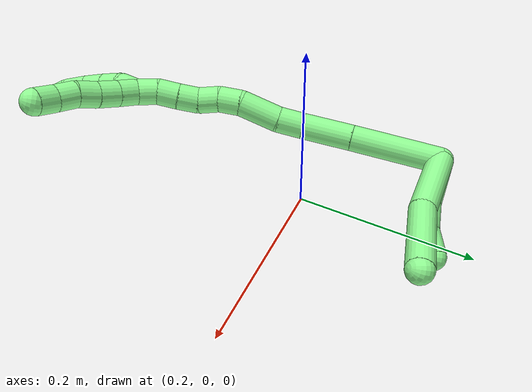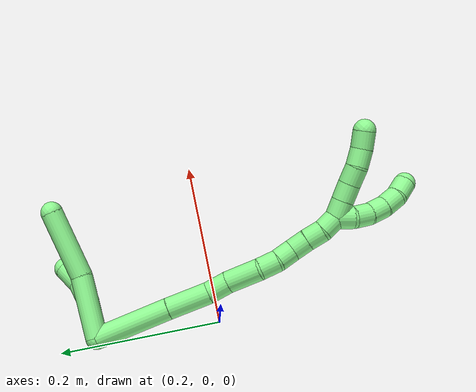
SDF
<sdf version="1.7">
 <world name="default">
  <model name="13">
   <static>0</static>
   <link name="13">
    <collision name="collision-cylinder-e_1_2_8">
     <pose>-0.005766 0.029401 0.019657 -0.981461 -0.16161 0.086487</pose>
     <geometry><cylinder><radius>0.0125</radius><length>0.071668</length></cylinder></geometry>
     <surface>
      <friction><ode><mu>1.16</mu><mu2>1.16</mu2><slip1>0</slip1><slip2>0</slip2></ode></friction>
      <contact><ode><kp>1e+06</kp><kd>1</kd><max_vel>0</max_vel><min_depth>0.001</min_depth></ode></contact>
     </surface>
    </collision>
    <visual name="visual-cylinder-e_1_2_8">
     <pose>-0.005766 0.029401 0.019657 -0.981461 -0.16161 0.086487</pose>
     <geometry><cylinder><radius>0.0125</radius><length>0.071668</length></cylinder></geometry>
     <material><ambient>0.564706 0.984314 0.572549 1</ambient></material>
    </visual>
    <collision name="collision-cylinder-e_2_8_6">
     <pose>-0.026037 0.090465 0.057233 -1.05582 -0.379385 0.222989</pose>
     <geometry><cylinder><radius>0.0125</radius><length>0.078332</length></cylinder></geometry>
     <surface>
      <friction><ode><mu>1.16</mu><mu2>1.16</mu2><slip1>0</slip1><slip2>0</slip2></ode></friction>
      <contact><ode><kp>1e+06</kp><kd>1</kd><max_vel>0</max_vel><min_depth>0.001</min_depth></ode></contact>
     </surface>
    </collision>
    <visual name="visual-cylinder-e_2_8_6">
     <pose>-0.026037 0.090465 0.057233 -1.05582 -0.379385 0.222989</pose>
     <geometry><cylinder><radius>0.0125</radius><length>0.078332</length></cylinder></geometry>
     <material><ambient>0.564706 0.984314 0.572549 1</ambient></material>
    </visual>
    <collision name="collision-cylinder-e_1_2_9">
     <pose>0.002068 0.021784 0.008717 -1.19016 0.087892 -0.059518</pose>
     <geometry><cylinder><radius>0.0125</radius><length>0.047109</length></cylinder></geometry>
     <surface>
      <friction><ode><mu>1.16</mu><mu2>1.16</mu2><slip1>0</slip1><slip2>0</slip2></ode></friction>
      <contact><ode><kp>1e+06</kp><kd>1</kd><max_vel>0</max_vel><min_depth>0.001</min_depth></ode></contact>
     </surface>
    </collision>
    <visual name="visual-cylinder-e_1_2_9">
     <pose>0.002068 0.021784 0.008717 -1.19016 0.087892 -0.059518</pose>
     <geometry><cylinder><radius>0.0125</radius><length>0.047109</length></cylinder></geometry>
     <material><ambient>0.564706 0.984314 0.572549 1</ambient></material>
    </visual>
    <collision name="collision-cylinder-e_2_9_10">
     <pose>0.005719 0.0565 0.018795 -1.46593 0.121171 -0.109112</pose>
     <geometry><cylinder><radius>0.0125</radius><length>0.026198</length></cylinder></geometry>
     <surface>
      <friction><ode><mu>1.16</mu><mu2>1.16</mu2><slip1>0</slip1><slip2>0</slip2></ode></friction>
      <contact><ode><kp>1e+06</kp><kd>1</kd><max_vel>0</max_vel><min_depth>0.001</min_depth></ode></contact>
     </surface>
    </collision>
    <visual name="visual-cylinder-e_2_9_10">
     <pose>0.005719 0.0565 0.018795 -1.46593 0.121171 -0.109112</pose>
     <geometry><cylinder><radius>0.0125</radius><length>0.026198</length></cylinder></geometry>
     <material><ambient>0.564706 0.984314 0.572549 1</ambient></material>
    </visual>
    <collision name="collision-cylinder-e_3_10_5">
     <pose>0.004892 0.082554 0.019823 -1.59614 -0.181549 0.186182</pose>
     <geometry><cylinder><radius>0.0125</radius><length>0.026693</length></cylinder></geometry>
     <surface>
      <friction><ode><mu>1.16</mu><mu2>1.16</mu2><slip1>0</slip1><slip2>0</slip2></ode></friction>
      <contact><ode><kp>1e+06</kp><kd>1</kd><max_vel>0</max_vel><min_depth>0.001</min_depth></ode></contact>
     </surface>
    </collision>
    <visual name="visual-cylinder-e_3_10_5">
     <pose>0.004892 0.082554 0.019823 -1.59614 -0.181549 0.186182</pose>
     <geometry><cylinder><radius>0.0125</radius><length>0.026693</length></cylinder></geometry>
     <material><ambient>0.564706 0.984314 0.572549 1</ambient></material>
    </visual>
    <collision name="collision-cylinder-e_1_2_11">
     <pose>0.020736 -0.012608 0.035689 0.339588 0.501187 0.087715</pose>
     <geometry><cylinder><radius>0.0125</radius><length>0.086316</length></cylinder></geometry>
     <surface>
      <friction><ode><mu>1.16</mu><mu2>1.16</mu2><slip1>0</slip1><slip2>0</slip2></ode></friction>
      <contact><ode><kp>1e+06</kp><kd>1</kd><max_vel>0</max_vel><min_depth>0.001</min_depth></ode></contact>
     </surface>
    </collision>
    <visual name="visual-cylinder-e_1_2_11">
     <pose>0.020736 -0.012608 0.035689 0.339588 0.501187 0.087715</pose>
     <geometry><cylinder><radius>0.0125</radius><length>0.086316</length></cylinder></geometry>
     <material><ambient>0.564706 0.984314 0.572549 1</ambient></material>
    </visual>
    <collision name="collision-cylinder-e_2_11_12">
     <pose>0.053765 -0.032374 0.090971 0.350253 0.532523 0.096441</pose>
     <geometry><cylinder><radius>0.0125</radius><length>0.048427</length></cylinder></geometry>
     <surface>
      <friction><ode><mu>1.16</mu><mu2>1.16</mu2><slip1>0</slip1><slip2>0</slip2></ode></friction>
      <contact><ode><kp>1e+06</kp><kd>1</kd><max_vel>0</max_vel><min_depth>0.001</min_depth></ode></contact>
     </surface>
    </collision>
    <visual name="visual-cylinder-e_2_11_12">
     <pose>0.053765 -0.032374 0.090971 0.350253 0.532523 0.096441</pose>
     <geometry><cylinder><radius>0.0125</radius><length>0.048427</length></cylinder></geometry>
     <material><ambient>0.564706 0.984314 0.572549 1</ambient></material>
    </visual>
    <collision name="collision-cylinder-e_3_12_13">
     <pose>0.070643 -0.04249 0.121705 0.259532 0.378555 0.049989</pose>
     <geometry><cylinder><radius>0.0125</radius><length>0.024809</length></cylinder></geometry>
     <surface>
      <friction><ode><mu>1.16</mu><mu2>1.16</mu2><slip1>0</slip1><slip2>0</slip2></ode></friction>
      <contact><ode><kp>1e+06</kp><kd>1</kd><max_vel>0</max_vel><min_depth>0.001</min_depth></ode></contact>
     </surface>
    </collision>
    <visual name="visual-cylinder-e_3_12_13">
     <pose>0.070643 -0.04249 0.121705 0.259532 0.378555 0.049989</pose>
     <geometry><cylinder><radius>0.0125</radius><length>0.024809</length></cylinder></geometry>
     <material><ambient>0.564706 0.984314 0.572549 1</ambient></material>
    </visual>
    <collision name="collision-cylinder-e_4_13_14">
     <pose>0.081066 -0.052846 0.149686 0.413931 0.30735 0.065025</pose>
     <geometry><cylinder><radius>0.0125</radius><length>0.038597</length></cylinder></geometry>
     <surface>
      <friction><ode><mu>1.16</mu><mu2>1.16</mu2><slip1>0</slip1><slip2>0</slip2></ode></friction>
      <contact><ode><kp>1e+06</kp><kd>1</kd><max_vel>0</max_vel><min_depth>0.001</min_depth></ode></contact>
     </surface>
    </collision>
    <visual name="visual-cylinder-e_4_13_14">
     <pose>0.081066 -0.052846 0.149686 0.413931 0.30735 0.065025</pose>
     <geometry><cylinder><radius>0.0125</radius><length>0.038597</length></cylinder></geometry>
     <material><ambient>0.564706 0.984314 0.572549 1</ambient></material>
    </visual>
    <collision name="collision-cylinder-e_5_14_15">
     <pose>0.092358 -0.062705 0.175459 0.268805 0.532045 0.073655</pose>
     <geometry><cylinder><radius>0.0125</radius><length>0.0215</length></cylinder></geometry>
     <surface>
      <friction><ode><mu>1.16</mu><mu2>1.16</mu2><slip1>0</slip1><slip2>0</slip2></ode></friction>
      <contact><ode><kp>1e+06</kp><kd>1</kd><max_vel>0</max_vel><min_depth>0.001</min_depth></ode></contact>
     </surface>
    </collision>
    <visual name="visual-cylinder-e_5_14_15">
     <pose>0.092358 -0.062705 0.175459 0.268805 0.532045 0.073655</pose>
     <geometry><cylinder><radius>0.0125</radius><length>0.0215</length></cylinder></geometry>
     <material><ambient>0.564706 0.984314 0.572549 1</ambient></material>
    </visual>
    <collision name="collision-cylinder-e_6_15_16">
     <pose>0.103654 -0.065092 0.19266 -0.008814 0.615043 -0.002799</pose>
     <geometry><cylinder><radius>0.0125</radius><length>0.020251</length></cylinder></geometry>
     <surface>
      <friction><ode><mu>1.16</mu><mu2>1.16</mu2><slip1>0</slip1><slip2>0</slip2></ode></friction>
      <contact><ode><kp>1e+06</kp><kd>1</kd><max_vel>0</max_vel><min_depth>0.001</min_depth></ode></contact>
     </surface>
    </collision>
    <visual name="visual-cylinder-e_6_15_16">
     <pose>0.103654 -0.065092 0.19266 -0.008814 0.615043 -0.002799</pose>
     <geometry><cylinder><radius>0.0125</radius><length>0.020251</length></cylinder></geometry>
     <material><ambient>0.564706 0.984314 0.572549 1</ambient></material>
    </visual>
    <collision name="collision-cylinder-e_7_16_17">
     <pose>0.112847 -0.066501 0.210248 0.157722 0.341255 0.027231</pose>
     <geometry><cylinder><radius>0.0125</radius><length>0.020026</length></cylinder></geometry>
     <surface>
      <friction><ode><mu>1.16</mu><mu2>1.16</mu2><slip1>0</slip1><slip2>0</slip2></ode></friction>
      <contact><ode><kp>1e+06</kp><kd>1</kd><max_vel>0</max_vel><min_depth>0.001</min_depth></ode></contact>
     </surface>
    </collision>
    <visual name="visual-cylinder-e_7_16_17">
     <pose>0.112847 -0.066501 0.210248 0.157722 0.341255 0.027231</pose>
     <geometry><cylinder><radius>0.0125</radius><length>0.020026</length></cylinder></geometry>
     <material><ambient>0.564706 0.984314 0.572549 1</ambient></material>
    </visual>
    <collision name="collision-cylinder-e_8_17_18">
     <pose>0.119799 -0.070029 0.228685 0.220664 0.367816 0.041207</pose>
     <geometry><cylinder><radius>0.0125</radius><length>0.02003</length></cylinder></geometry>
     <surface>
      <friction><ode><mu>1.16</mu><mu2>1.16</mu2><slip1>0</slip1><slip2>0</slip2></ode></friction>
      <contact><ode><kp>1e+06</kp><kd>1</kd><max_vel>0</max_vel><min_depth>0.001</min_depth></ode></contact>
     </surface>
    </collision>
    <visual name="visual-cylinder-e_8_17_18">
     <pose>0.119799 -0.070029 0.228685 0.220664 0.367816 0.041207</pose>
     <geometry><cylinder><radius>0.0125</radius><length>0.02003</length></cylinder></geometry>
     <material><ambient>0.564706 0.984314 0.572549 1</ambient></material>
    </visual>
    <collision name="collision-cylinder-e_9_18_1">
     <pose>0.127268 -0.071382 0.247023 -0.074876 0.396196 -0.015037</pose>
     <geometry><cylinder><radius>0.0125</radius><length>0.020044</length></cylinder></geometry>
     <surface>
      <friction><ode><mu>1.16</mu><mu2>1.16</mu2><slip1>0</slip1><slip2>0</slip2></ode></friction>
      <contact><ode><kp>1e+06</kp><kd>1</kd><max_vel>0</max_vel><min_depth>0.001</min_depth></ode></contact>
     </surface>
    </collision>
    <visual name="visual-cylinder-e_9_18_1">
     <pose>0.127268 -0.071382 0.247023 -0.074876 0.396196 -0.015037</pose>
     <geometry><cylinder><radius>0.0125</radius><length>0.020044</length></cylinder></geometry>
     <material><ambient>0.564706 0.984314 0.572549 1</ambient></material>
    </visual>
    <collision name="collision-cylinder-e_1_1_19">
     <pose>0.137736 -0.075788 0.261761 0.745798 0.720887 0.292786</pose>
     <geometry><cylinder><radius>0.0125</radius><length>0.02</length></cylinder></geometry>
     <surface>
      <friction><ode><mu>1.16</mu><mu2>1.16</mu2><slip1>0</slip1><slip2>0</slip2></ode></friction>
      <contact><ode><kp>1e+06</kp><kd>1</kd><max_vel>0</max_vel><min_depth>0.001</min_depth></ode></contact>
     </surface>
    </collision>
    <visual name="visual-cylinder-e_1_1_19">
     <pose>0.137736 -0.075788 0.261761 0.745798 0.720887 0.292786</pose>
     <geometry><cylinder><radius>0.0125</radius><length>0.02</length></cylinder></geometry>
     <material><ambient>0.564706 0.984314 0.572549 1</ambient></material>
    </visual>
    <collision name="collision-cylinder-e_2_19_20">
     <pose>0.152342 -0.083 0.272887 0.360575 0.928168 0.181962</pose>
     <geometry><cylinder><radius>0.0125</radius><length>0.02</length></cylinder></geometry>
     <surface>
      <friction><ode><mu>1.16</mu><mu2>1.16</mu2><slip1>0</slip1><slip2>0</slip2></ode></friction>
      <contact><ode><kp>1e+06</kp><kd>1</kd><max_vel>0</max_vel><min_depth>0.001</min_depth></ode></contact>
     </surface>
    </collision>
    <visual name="visual-cylinder-e_2_19_20">
     <pose>0.152342 -0.083 0.272887 0.360575 0.928168 0.181962</pose>
     <geometry><cylinder><radius>0.0125</radius><length>0.02</length></cylinder></geometry>
     <material><ambient>0.564706 0.984314 0.572549 1</ambient></material>
    </visual>
    <collision name="collision-cylinder-e_3_20_21">
     <pose>0.167447 -0.085722 0.28551 0.086318 0.789504 0.03598</pose>
     <geometry><cylinder><radius>0.0125</radius><length>0.02</length></cylinder></geometry>
     <surface>
      <friction><ode><mu>1.16</mu><mu2>1.16</mu2><slip1>0</slip1><slip2>0</slip2></ode></friction>
      <contact><ode><kp>1e+06</kp><kd>1</kd><max_vel>0</max_vel><min_depth>0.001</min_depth></ode></contact>
     </surface>
    </collision>
    <visual name="visual-cylinder-e_3_20_21">
     <pose>0.167447 -0.085722 0.28551 0.086318 0.789504 0.03598</pose>
     <geometry><cylinder><radius>0.0125</radius><length>0.02</length></cylinder></geometry>
     <material><ambient>0.564706 0.984314 0.572549 1</ambient></material>
    </visual>
    <collision name="collision-cylinder-e_4_21_22">
     <pose>0.180638 -0.085402 0.300403 -0.117057 0.654907 -0.039802</pose>
     <geometry><cylinder><radius>0.0125</radius><length>0.02</length></cylinder></geometry>
     <surface>
      <friction><ode><mu>1.16</mu><mu2>1.16</mu2><slip1>0</slip1><slip2>0</slip2></ode></friction>
      <contact><ode><kp>1e+06</kp><kd>1</kd><max_vel>0</max_vel><min_depth>0.001</min_depth></ode></contact>
     </surface>
    </collision>
    <visual name="visual-cylinder-e_4_21_22">
     <pose>0.180638 -0.085402 0.300403 -0.117057 0.654907 -0.039802</pose>
     <geometry><cylinder><radius>0.0125</radius><length>0.02</length></cylinder></geometry>
     <material><ambient>0.564706 0.984314 0.572549 1</ambient></material>
    </visual>
    <collision name="collision-cylinder-e_5_22_4">
     <pose>0.192581 -0.080481 0.315335 -0.515246 0.625125 -0.169879</pose>
     <geometry><cylinder><radius>0.0125</radius><length>0.02</length></cylinder></geometry>
     <surface>
      <friction><ode><mu>1.16</mu><mu2>1.16</mu2><slip1>0</slip1><slip2>0</slip2></ode></friction>
      <contact><ode><kp>1e+06</kp><kd>1</kd><max_vel>0</max_vel><min_depth>0.001</min_depth></ode></contact>
     </surface>
    </collision>
    <visual name="visual-cylinder-e_5_22_4">
     <pose>0.192581 -0.080481 0.315335 -0.515246 0.625125 -0.169879</pose>
     <geometry><cylinder><radius>0.0125</radius><length>0.02</length></cylinder></geometry>
     <material><ambient>0.564706 0.984314 0.572549 1</ambient></material>
    </visual>
    <collision name="collision-cylinder-e_1_1_23">
     <pose>0.131132 -0.067396 0.265684 -0.33576 -0.000418 7.1e-05</pose>
     <geometry><cylinder><radius>0.0125</radius><length>0.02</length></cylinder></geometry>
     <surface>
      <friction><ode><mu>1.16</mu><mu2>1.16</mu2><slip1>0</slip1><slip2>0</slip2></ode></friction>
      <contact><ode><kp>1e+06</kp><kd>1</kd><max_vel>0</max_vel><min_depth>0.001</min_depth></ode></contact>
     </surface>
    </collision>
    <visual name="visual-cylinder-e_1_1_23">
     <pose>0.131132 -0.067396 0.265684 -0.33576 -0.000418 7.1e-05</pose>
     <geometry><cylinder><radius>0.0125</radius><length>0.02</length></cylinder></geometry>
     <material><ambient>0.564706 0.984314 0.572549 1</ambient></material>
    </visual>
    <collision name="collision-cylinder-e_2_23_24">
     <pose>0.130879 -0.060967 0.284619 -0.318905 -0.024849 0.003996</pose>
     <geometry><cylinder><radius>0.0125</radius><length>0.02</length></cylinder></geometry>
     <surface>
      <friction><ode><mu>1.16</mu><mu2>1.16</mu2><slip1>0</slip1><slip2>0</slip2></ode></friction>
      <contact><ode><kp>1e+06</kp><kd>1</kd><max_vel>0</max_vel><min_depth>0.001</min_depth></ode></contact>
     </surface>
    </collision>
    <visual name="visual-cylinder-e_2_23_24">
     <pose>0.130879 -0.060967 0.284619 -0.318905 -0.024849 0.003996</pose>
     <geometry><cylinder><radius>0.0125</radius><length>0.02</length></cylinder></geometry>
     <material><ambient>0.564706 0.984314 0.572549 1</ambient></material>
    </visual>
    <collision name="collision-cylinder-e_3_24_25">
     <pose>0.129885 -0.055322 0.303763 -0.254532 -0.074666 0.009558</pose>
     <geometry><cylinder><radius>0.0125</radius><length>0.02</length></cylinder></geometry>
     <surface>
      <friction><ode><mu>1.16</mu><mu2>1.16</mu2><slip1>0</slip1><slip2>0</slip2></ode></friction>
      <contact><ode><kp>1e+06</kp><kd>1</kd><max_vel>0</max_vel><min_depth>0.001</min_depth></ode></contact>
     </surface>
    </collision>
    <visual name="visual-cylinder-e_3_24_25">
     <pose>0.129885 -0.055322 0.303763 -0.254532 -0.074666 0.009558</pose>
     <geometry><cylinder><radius>0.0125</radius><length>0.02</length></cylinder></geometry>
     <material><ambient>0.564706 0.984314 0.572549 1</ambient></material>
    </visual>
    <collision name="collision-cylinder-e_4_25_26">
     <pose>0.129058 -0.04836 0.322368 -0.461296 -0.008059 0.001892</pose>
     <geometry><cylinder><radius>0.0125</radius><length>0.02</length></cylinder></geometry>
     <surface>
      <friction><ode><mu>1.16</mu><mu2>1.16</mu2><slip1>0</slip1><slip2>0</slip2></ode></friction>
      <contact><ode><kp>1e+06</kp><kd>1</kd><max_vel>0</max_vel><min_depth>0.001</min_depth></ode></contact>
     </surface>
    </collision>
    <visual name="visual-cylinder-e_4_25_26">
     <pose>0.129058 -0.04836 0.322368 -0.461296 -0.008059 0.001892</pose>
     <geometry><cylinder><radius>0.0125</radius><length>0.02</length></cylinder></geometry>
     <material><ambient>0.564706 0.984314 0.572549 1</ambient></material>
    </visual>
    <collision name="collision-cylinder-e_5_26_3">
     <pose>0.127107 -0.039246 0.339969 -0.494581 -0.188175 0.047638</pose>
     <geometry><cylinder><radius>0.0125</radius><length>0.02</length></cylinder></geometry>
     <surface>
      <friction><ode><mu>1.16</mu><mu2>1.16</mu2><slip1>0</slip1><slip2>0</slip2></ode></friction>
      <contact><ode><kp>1e+06</kp><kd>1</kd><max_vel>0</max_vel><min_depth>0.001</min_depth></ode></contact>
     </surface>
    </collision>
    <visual name="visual-cylinder-e_5_26_3">
     <pose>0.127107 -0.039246 0.339969 -0.494581 -0.188175 0.047638</pose>
     <geometry><cylinder><radius>0.0125</radius><length>0.02</length></cylinder></geometry>
     <material><ambient>0.564706 0.984314 0.572549 1</ambient></material>
    </visual>
    <collision name="collision-sphere-3">
     <pose>0.125236 -0.034583 0.348615 0 -0 0</pose>
     <geometry><sphere><radius>0.0125</radius></sphere></geometry>
     <surface>
      <friction><ode><mu>1.16</mu><mu2>1.16</mu2><slip1>0</slip1><slip2>0</slip2></ode></friction>
      <contact><ode><kp>1e+06</kp><kd>1</kd><max_vel>0</max_vel><min_depth>0.001</min_depth></ode></contact>
     </surface>
    </collision>
    <visual name="visual-sphere-3">
     <pose>0.125236 -0.034583 0.348615 0 -0 0</pose>
     <geometry><sphere><radius>0.0125</radius></sphere></geometry>
     <material><ambient>0.564706 0.984314 0.572549 1</ambient></material>
    </visual>
    <collision name="collision-sphere-26">
     <pose>0.128977 -0.043909 0.331322 0 -0 0</pose>
     <geometry><sphere><radius>0.0125</radius></sphere></geometry>
     <surface>
      <friction><ode><mu>1.16</mu><mu2>1.16</mu2><slip1>0</slip1><slip2>0</slip2></ode></friction>
      <contact><ode><kp>1e+06</kp><kd>1</kd><max_vel>0</max_vel><min_depth>0.001</min_depth></ode></contact>
     </surface>
    </collision>
    <visual name="visual-sphere-26">
     <pose>0.128977 -0.043909 0.331322 0 -0 0</pose>
     <geometry><sphere><radius>0.0125</radius></sphere></geometry>
     <material><ambient>0.564706 0.984314 0.572549 1</ambient></material>
    </visual>
    <collision name="collision-sphere-25">
     <pose>0.129139 -0.052811 0.313413 0 -0 0</pose>
     <geometry><sphere><radius>0.0125</radius></sphere></geometry>
     <surface>
      <friction><ode><mu>1.16</mu><mu2>1.16</mu2><slip1>0</slip1><slip2>0</slip2></ode></friction>
      <contact><ode><kp>1e+06</kp><kd>1</kd><max_vel>0</max_vel><min_depth>0.001</min_depth></ode></contact>
     </surface>
    </collision>
    <visual name="visual-sphere-25">
     <pose>0.129139 -0.052811 0.313413 0 -0 0</pose>
     <geometry><sphere><radius>0.0125</radius></sphere></geometry>
     <material><ambient>0.564706 0.984314 0.572549 1</ambient></material>
    </visual>
    <collision name="collision-sphere-24">
     <pose>0.130631 -0.057832 0.294112 0 -0 0</pose>
     <geometry><sphere><radius>0.0125</radius></sphere></geometry>
     <surface>
      <friction><ode><mu>1.16</mu><mu2>1.16</mu2><slip1>0</slip1><slip2>0</slip2></ode></friction>
      <contact><ode><kp>1e+06</kp><kd>1</kd><max_vel>0</max_vel><min_depth>0.001</min_depth></ode></contact>
     </surface>
    </collision>
    <visual name="visual-sphere-24">
     <pose>0.130631 -0.057832 0.294112 0 -0 0</pose>
     <geometry><sphere><radius>0.0125</radius></sphere></geometry>
     <material><ambient>0.564706 0.984314 0.572549 1</ambient></material>
    </visual>
    <collision name="collision-sphere-23">
     <pose>0.131127 -0.064101 0.275126 0 -0 0</pose>
     <geometry><sphere><radius>0.0125</radius></sphere></geometry>
     <surface>
      <friction><ode><mu>1.16</mu><mu2>1.16</mu2><slip1>0</slip1><slip2>0</slip2></ode></friction>
      <contact><ode><kp>1e+06</kp><kd>1</kd><max_vel>0</max_vel><min_depth>0.001</min_depth></ode></contact>
     </surface>
    </collision>
    <visual name="visual-sphere-23">
     <pose>0.131127 -0.064101 0.275126 0 -0 0</pose>
     <geometry><sphere><radius>0.0125</radius></sphere></geometry>
     <material><ambient>0.564706 0.984314 0.572549 1</ambient></material>
    </visual>
    <collision name="collision-sphere-4">
     <pose>0.198433 -0.076485 0.322392 0 -0 0</pose>
     <geometry><sphere><radius>0.0125</radius></sphere></geometry>
     <surface>
      <friction><ode><mu>1.16</mu><mu2>1.16</mu2><slip1>0</slip1><slip2>0</slip2></ode></friction>
      <contact><ode><kp>1e+06</kp><kd>1</kd><max_vel>0</max_vel><min_depth>0.001</min_depth></ode></contact>
     </surface>
    </collision>
    <visual name="visual-sphere-4">
     <pose>0.198433 -0.076485 0.322392 0 -0 0</pose>
     <geometry><sphere><radius>0.0125</radius></sphere></geometry>
     <material><ambient>0.564706 0.984314 0.572549 1</ambient></material>
    </visual>
    <collision name="collision-sphere-22">
     <pose>0.186729 -0.084476 0.308279 0 -0 0</pose>
     <geometry><sphere><radius>0.0125</radius></sphere></geometry>
     <surface>
      <friction><ode><mu>1.16</mu><mu2>1.16</mu2><slip1>0</slip1><slip2>0</slip2></ode></friction>
      <contact><ode><kp>1e+06</kp><kd>1</kd><max_vel>0</max_vel><min_depth>0.001</min_depth></ode></contact>
     </surface>
    </collision>
    <visual name="visual-sphere-22">
     <pose>0.186729 -0.084476 0.308279 0 -0 0</pose>
     <geometry><sphere><radius>0.0125</radius></sphere></geometry>
     <material><ambient>0.564706 0.984314 0.572549 1</ambient></material>
    </visual>
    <collision name="collision-sphere-21">
     <pose>0.174547 -0.086329 0.292526 0 -0 0</pose>
     <geometry><sphere><radius>0.0125</radius></sphere></geometry>
     <surface>
      <friction><ode><mu>1.16</mu><mu2>1.16</mu2><slip1>0</slip1><slip2>0</slip2></ode></friction>
      <contact><ode><kp>1e+06</kp><kd>1</kd><max_vel>0</max_vel><min_depth>0.001</min_depth></ode></contact>
     </surface>
    </collision>
    <visual name="visual-sphere-21">
     <pose>0.174547 -0.086329 0.292526 0 -0 0</pose>
     <geometry><sphere><radius>0.0125</radius></sphere></geometry>
     <material><ambient>0.564706 0.984314 0.572549 1</ambient></material>
    </visual>
    <collision name="collision-sphere-20">
     <pose>0.160347 -0.085115 0.278494 0 -0 0</pose>
     <geometry><sphere><radius>0.0125</radius></sphere></geometry>
     <surface>
      <friction><ode><mu>1.16</mu><mu2>1.16</mu2><slip1>0</slip1><slip2>0</slip2></ode></friction>
      <contact><ode><kp>1e+06</kp><kd>1</kd><max_vel>0</max_vel><min_depth>0.001</min_depth></ode></contact>
     </surface>
    </collision>
    <visual name="visual-sphere-20">
     <pose>0.160347 -0.085115 0.278494 0 -0 0</pose>
     <geometry><sphere><radius>0.0125</radius></sphere></geometry>
     <material><ambient>0.564706 0.984314 0.572549 1</ambient></material>
    </visual>
    <collision name="collision-sphere-5">
     <pose>0.002482 0.095677 0.019491 0 -0 0</pose>
     <geometry><sphere><radius>0.0125</radius></sphere></geometry>
     <surface>
      <friction><ode><mu>1.16</mu><mu2>1.16</mu2><slip1>0</slip1><slip2>0</slip2></ode></friction>
      <contact><ode><kp>1e+06</kp><kd>1</kd><max_vel>0</max_vel><min_depth>0.001</min_depth></ode></contact>
     </surface>
    </collision>
    <visual name="visual-sphere-5">
     <pose>0.002482 0.095677 0.019491 0 -0 0</pose>
     <geometry><sphere><radius>0.0125</radius></sphere></geometry>
     <material><ambient>0.564706 0.984314 0.572549 1</ambient></material>
    </visual>
    <collision name="collision-sphere-10">
     <pose>0.007302 0.069431 0.020156 0 -0 0</pose>
     <geometry><sphere><radius>0.0125</radius></sphere></geometry>
     <surface>
      <friction><ode><mu>1.16</mu><mu2>1.16</mu2><slip1>0</slip1><slip2>0</slip2></ode></friction>
      <contact><ode><kp>1e+06</kp><kd>1</kd><max_vel>0</max_vel><min_depth>0.001</min_depth></ode></contact>
     </surface>
    </collision>
    <visual name="visual-sphere-10">
     <pose>0.007302 0.069431 0.020156 0 -0 0</pose>
     <geometry><sphere><radius>0.0125</radius></sphere></geometry>
     <material><ambient>0.564706 0.984314 0.572549 1</ambient></material>
    </visual>
    <collision name="collision-sphere-6">
     <pose>-0.040542 0.122127 0.075151 0 -0 0</pose>
     <geometry><sphere><radius>0.0125</radius></sphere></geometry>
     <surface>
      <friction><ode><mu>1.16</mu><mu2>1.16</mu2><slip1>0</slip1><slip2>0</slip2></ode></friction>
      <contact><ode><kp>1e+06</kp><kd>1</kd><max_vel>0</max_vel><min_depth>0.001</min_depth></ode></contact>
     </surface>
    </collision>
    <visual name="visual-sphere-6">
     <pose>-0.040542 0.122127 0.075151 0 -0 0</pose>
     <geometry><sphere><radius>0.0125</radius></sphere></geometry>
     <material><ambient>0.564706 0.984314 0.572549 1</ambient></material>
    </visual>
    <collision name="collision-sphere-9">
     <pose>0.004135 0.043568 0.017434 0 -0 0</pose>
     <geometry><sphere><radius>0.0125</radius></sphere></geometry>
     <surface>
      <friction><ode><mu>1.16</mu><mu2>1.16</mu2><slip1>0</slip1><slip2>0</slip2></ode></friction>
      <contact><ode><kp>1e+06</kp><kd>1</kd><max_vel>0</max_vel><min_depth>0.001</min_depth></ode></contact>
     </surface>
    </collision>
    <visual name="visual-sphere-9">
     <pose>0.004135 0.043568 0.017434 0 -0 0</pose>
     <geometry><sphere><radius>0.0125</radius></sphere></geometry>
     <material><ambient>0.564706 0.984314 0.572549 1</ambient></material>
    </visual>
    <collision name="collision-sphere-2">
     <geometry><sphere><radius>0.0125</radius></sphere></geometry>
     <surface>
      <friction><ode><mu>1.16</mu><mu2>1.16</mu2><slip1>0</slip1><slip2>0</slip2></ode></friction>
      <contact><ode><kp>1e+06</kp><kd>1</kd><max_vel>0</max_vel><min_depth>0.001</min_depth></ode></contact>
     </surface>
    </collision>
    <visual name="visual-sphere-2">
     <geometry><sphere><radius>0.0125</radius></sphere></geometry>
     <material><ambient>0.564706 0.984314 0.572549 1</ambient></material>
    </visual>
    <collision name="collision-sphere-19">
     <pose>0.144337 -0.080886 0.267279 0 -0 0</pose>
     <geometry><sphere><radius>0.0125</radius></sphere></geometry>
     <surface>
      <friction><ode><mu>1.16</mu><mu2>1.16</mu2><slip1>0</slip1><slip2>0</slip2></ode></friction>
      <contact><ode><kp>1e+06</kp><kd>1</kd><max_vel>0</max_vel><min_depth>0.001</min_depth></ode></contact>
     </surface>
    </collision>
    <visual name="visual-sphere-19">
     <pose>0.144337 -0.080886 0.267279 0 -0 0</pose>
     <geometry><sphere><radius>0.0125</radius></sphere></geometry>
     <material><ambient>0.564706 0.984314 0.572549 1</ambient></material>
    </visual>
    <collision name="collision-sphere-8">
     <pose>-0.011532 0.058802 0.039315 0 -0 0</pose>
     <geometry><sphere><radius>0.0125</radius></sphere></geometry>
     <surface>
      <friction><ode><mu>1.16</mu><mu2>1.16</mu2><slip1>0</slip1><slip2>0</slip2></ode></friction>
      <contact><ode><kp>1e+06</kp><kd>1</kd><max_vel>0</max_vel><min_depth>0.001</min_depth></ode></contact>
     </surface>
    </collision>
    <visual name="visual-sphere-8">
     <pose>-0.011532 0.058802 0.039315 0 -0 0</pose>
     <geometry><sphere><radius>0.0125</radius></sphere></geometry>
     <material><ambient>0.564706 0.984314 0.572549 1</ambient></material>
    </visual>
    <collision name="collision-sphere-11">
     <pose>0.041472 -0.025216 0.071377 0 -0 0</pose>
     <geometry><sphere><radius>0.0125</radius></sphere></geometry>
     <surface>
      <friction><ode><mu>1.16</mu><mu2>1.16</mu2><slip1>0</slip1><slip2>0</slip2></ode></friction>
      <contact><ode><kp>1e+06</kp><kd>1</kd><max_vel>0</max_vel><min_depth>0.001</min_depth></ode></contact>
     </surface>
    </collision>
    <visual name="visual-sphere-11">
     <pose>0.041472 -0.025216 0.071377 0 -0 0</pose>
     <geometry><sphere><radius>0.0125</radius></sphere></geometry>
     <material><ambient>0.564706 0.984314 0.572549 1</ambient></material>
    </visual>
    <collision name="collision-sphere-12">
     <pose>0.066059 -0.039532 0.110565 0 -0 0</pose>
     <geometry><sphere><radius>0.0125</radius></sphere></geometry>
     <surface>
      <friction><ode><mu>1.16</mu><mu2>1.16</mu2><slip1>0</slip1><slip2>0</slip2></ode></friction>
      <contact><ode><kp>1e+06</kp><kd>1</kd><max_vel>0</max_vel><min_depth>0.001</min_depth></ode></contact>
     </surface>
    </collision>
    <visual name="visual-sphere-12">
     <pose>0.066059 -0.039532 0.110565 0 -0 0</pose>
     <geometry><sphere><radius>0.0125</radius></sphere></geometry>
     <material><ambient>0.564706 0.984314 0.572549 1</ambient></material>
    </visual>
    <collision name="collision-sphere-13">
     <pose>0.075227 -0.045448 0.132846 0 -0 0</pose>
     <geometry><sphere><radius>0.0125</radius></sphere></geometry>
     <surface>
      <friction><ode><mu>1.16</mu><mu2>1.16</mu2><slip1>0</slip1><slip2>0</slip2></ode></friction>
      <contact><ode><kp>1e+06</kp><kd>1</kd><max_vel>0</max_vel><min_depth>0.001</min_depth></ode></contact>
     </surface>
    </collision>
    <visual name="visual-sphere-13">
     <pose>0.075227 -0.045448 0.132846 0 -0 0</pose>
     <geometry><sphere><radius>0.0125</radius></sphere></geometry>
     <material><ambient>0.564706 0.984314 0.572549 1</ambient></material>
    </visual>
    <collision name="collision-sphere-14">
     <pose>0.086904 -0.060244 0.166527 0 -0 0</pose>
     <geometry><sphere><radius>0.0125</radius></sphere></geometry>
     <surface>
      <friction><ode><mu>1.16</mu><mu2>1.16</mu2><slip1>0</slip1><slip2>0</slip2></ode></friction>
      <contact><ode><kp>1e+06</kp><kd>1</kd><max_vel>0</max_vel><min_depth>0.001</min_depth></ode></contact>
     </surface>
    </collision>
    <visual name="visual-sphere-14">
     <pose>0.086904 -0.060244 0.166527 0 -0 0</pose>
     <geometry><sphere><radius>0.0125</radius></sphere></geometry>
     <material><ambient>0.564706 0.984314 0.572549 1</ambient></material>
    </visual>
    <collision name="collision-sphere-15">
     <pose>0.097811 -0.065165 0.18439 0 -0 0</pose>
     <geometry><sphere><radius>0.0125</radius></sphere></geometry>
     <surface>
      <friction><ode><mu>1.16</mu><mu2>1.16</mu2><slip1>0</slip1><slip2>0</slip2></ode></friction>
      <contact><ode><kp>1e+06</kp><kd>1</kd><max_vel>0</max_vel><min_depth>0.001</min_depth></ode></contact>
     </surface>
    </collision>
    <visual name="visual-sphere-15">
     <pose>0.097811 -0.065165 0.18439 0 -0 0</pose>
     <geometry><sphere><radius>0.0125</radius></sphere></geometry>
     <material><ambient>0.564706 0.984314 0.572549 1</ambient></material>
    </visual>
    <collision name="collision-sphere-16">
     <pose>0.109496 -0.065019 0.200929 0 -0 0</pose>
     <geometry><sphere><radius>0.0125</radius></sphere></geometry>
     <surface>
      <friction><ode><mu>1.16</mu><mu2>1.16</mu2><slip1>0</slip1><slip2>0</slip2></ode></friction>
      <contact><ode><kp>1e+06</kp><kd>1</kd><max_vel>0</max_vel><min_depth>0.001</min_depth></ode></contact>
     </surface>
    </collision>
    <visual name="visual-sphere-16">
     <pose>0.109496 -0.065019 0.200929 0 -0 0</pose>
     <geometry><sphere><radius>0.0125</radius></sphere></geometry>
     <material><ambient>0.564706 0.984314 0.572549 1</ambient></material>
    </visual>
    <collision name="collision-sphere-17">
     <pose>0.116198 -0.067983 0.219566 0 -0 0</pose>
     <geometry><sphere><radius>0.0125</radius></sphere></geometry>
     <surface>
      <friction><ode><mu>1.16</mu><mu2>1.16</mu2><slip1>0</slip1><slip2>0</slip2></ode></friction>
      <contact><ode><kp>1e+06</kp><kd>1</kd><max_vel>0</max_vel><min_depth>0.001</min_depth></ode></contact>
     </surface>
    </collision>
    <visual name="visual-sphere-17">
     <pose>0.116198 -0.067983 0.219566 0 -0 0</pose>
     <geometry><sphere><radius>0.0125</radius></sphere></geometry>
     <material><ambient>0.564706 0.984314 0.572549 1</ambient></material>
    </visual>
    <collision name="collision-sphere-18">
     <pose>0.1234 -0.072074 0.237803 0 -0 0</pose>
     <geometry><sphere><radius>0.0125</radius></sphere></geometry>
     <surface>
      <friction><ode><mu>1.16</mu><mu2>1.16</mu2><slip1>0</slip1><slip2>0</slip2></ode></friction>
      <contact><ode><kp>1e+06</kp><kd>1</kd><max_vel>0</max_vel><min_depth>0.001</min_depth></ode></contact>
     </surface>
    </collision>
    <visual name="visual-sphere-18">
     <pose>0.1234 -0.072074 0.237803 0 -0 0</pose>
     <geometry><sphere><radius>0.0125</radius></sphere></geometry>
     <material><ambient>0.564706 0.984314 0.572549 1</ambient></material>
    </visual>
    <collision name="collision-sphere-1">
     <pose>0.131136 -0.070691 0.256243 0 -0 0</pose>
     <geometry><sphere><radius>0.0125</radius></sphere></geometry>
     <surface>
      <friction><ode><mu>1.16</mu><mu2>1.16</mu2><slip1>0</slip1><slip2>0</slip2></ode></friction>
      <contact><ode><kp>1e+06</kp><kd>1</kd><max_vel>0</max_vel><min_depth>0.001</min_depth></ode></contact>
     </surface>
    </collision>
    <visual name="visual-sphere-1">
     <pose>0.131136 -0.070691 0.256243 0 -0 0</pose>
     <geometry><sphere><radius>0.0125</radius></sphere></geometry>
     <material><ambient>0.564706 0.984314 0.572549 1</ambient></material>
    </visual>
    <inertial>
     <pose>0.064095 -0.016415 0.138759 0 -0 0</pose>
     <mass>0.75</mass>
     <inertia>
      <ixx>0.000204</ixx>
      <ixy>0</ixy>
      <ixz>0</ixz>
      <iyy>0.000173</iyy>
      <iyz>0</iyz>
      <izz>-3.9e-05</izz>
     </inertia>
    </inertial>
   </link>
   <pose>0.198176 0.140573 0.120468 -0.693003 0.9358 -1.69307</pose>
  </model>
 </world>
</sdf>
